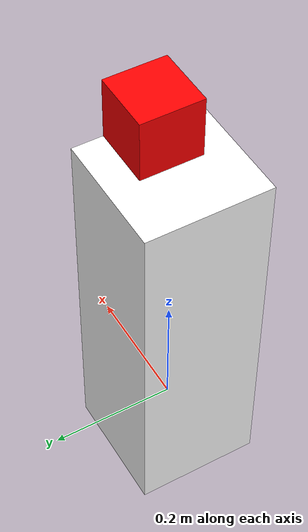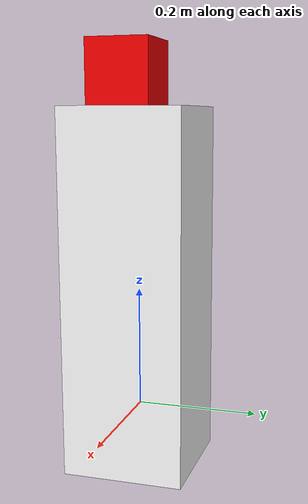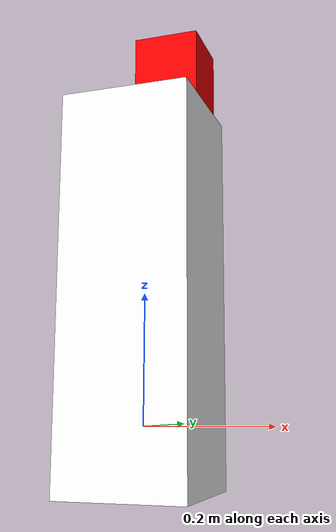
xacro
<?xml version="1.0"?>
<robot xmlns:xacro="http://www.ros.org/wiki/xacro"  name="camera">

    <xacro:include filename="inertia_macros.xacro"/>

    <material name = "white">
        <color rgba = "1 1 1 1"/>
    </material>

    <material name = "red">
        <color rgba = "1 0 0 1"/>
    </material>

    <joint name="base_link_joint" type="continuous">
        <parent link = "base_link"/>
        <child link = "camera_link"/>
        <origin xyz = "-0.50 0 0.55" rpy="0 ${pi/2} 0"/>
    </joint>

    <link name = "base_link">
        <visual>
            <origin xyz = "0 0 0.2"/>
            <geometry>
                <box size = "0.20 0.20 0.6"/>
            </geometry>
            <material name = "white"/>
        </visual>
        <collision>
            <origin xyz = "0 0 0.2"/>
            <geometry>
                <box size = "0.20 0.20 0.6"/>
            </geometry>
        </collision>
        <xacro:inertial_box mass = "0.5" x = "0.20" y = "0.20" z = "0.6">
            <origin xyz="0 0 0.2"/>
        </xacro:inertial_box>
    </link>

    <link name = "camera_link">
        <visual>
            <geometry>
                 <box size = "0.10 0.10 0.10"/>
            </geometry>
            <origin xyz = "0 0 0.55"/>
            <material name = "red"/>
        </visual>
        <collision>
            <geometry>
                <box size = "0.10 0.10 0.20"/>
            </geometry>
            <origin xyz = "0.10 0.10 0.6"/>
        </collision>
        <xacro:inertial_box mass = "0.3" x = "0.10" y = "0.10" z = "0.6">
            <origin xyz = "0 0 0"/>
        </xacro:inertial_box>
    </link>

    <joint name = "camera_joint" type = "fixed">
        <parent link = "camera_link"/>
        <child link = "camera_optical_frame"/>
        <origin xyz = "0 0 0.6" rpy="${-pi/2} 0 ${-pi/2}"/>
    </joint>

    <link name = "camera_optical_frame">

    </link>

    <gazebo reference="camera_link">
    <material>Gazebo/Red</material>

        <sensor name="camera" type="camera">
            <pose> 0 0 0 0 0 0 </pose>
            <visualize>true</visualize>
            <update_rate>10</update_rate>
            <camera>
                <horizontal_fov>1.089</horizontal_fov>
                <image>
                    <format>R8G8B8</format>
                    <width>640</width>
                    <height>480</height>
                </image>
                <clip>
                    <near>0.05</near>
                    <far>8.0</far>
                </clip>
            </camera>

            <plugin name="camera_controller" filename="libgazebo_ros_camera.so">
                <frame_name>camera_optical_frame</frame_name>

            </plugin>
        </sensor>
    </gazebo>

</robot>
